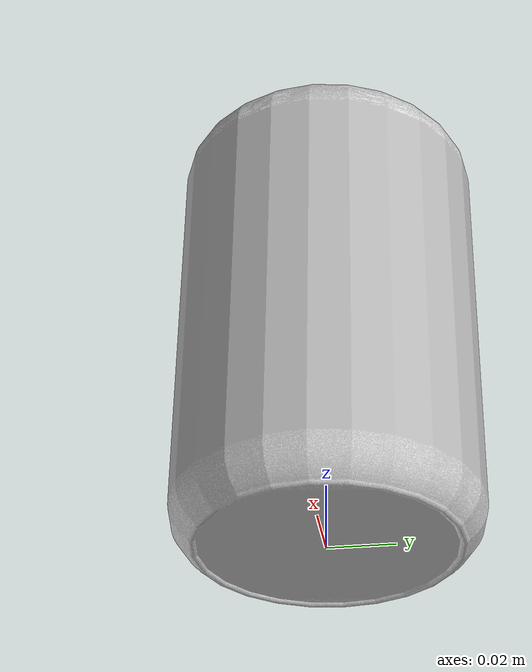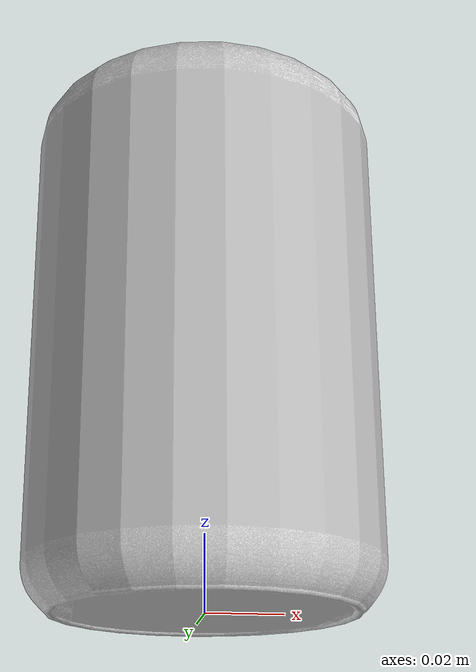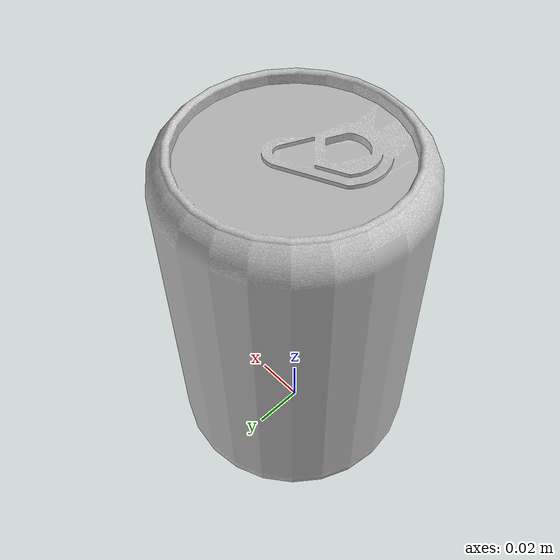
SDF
<?xml version="1.0" ?>
<sdf version="1.4">
  <model name="FantaOrangeCan">
    <link name="FantaOrangeCan_link">
      <inertial>
        <pose>0 0 0 0 0 0</pose>
        <mass>0.08</mass>
      </inertial>

      <visual name="FantaOrangeCan_visual">
        <pose>0 0 0 0 0 0</pose>
        <geometry>
          <mesh>
            <uri>model://FantaOrangeCan/meshes/FantaOrangeCan.dae</uri>
          </mesh>
        </geometry>
      </visual>

      <collision name="FantaOrangeCan_collision">
        <pose>0 0 0 0 0 0</pose>
        <geometry>
          <mesh>
            <uri>model://FantaOrangeCan/meshes/FantaOrangeCan.dae</uri>
          </mesh>
        </geometry>
        <surface>
          <friction>
            <ode>
              <mu>0.8</mu>
              <mu2>0.8</mu2>
              <fdir1>0.0 0.0 0.0</fdir1>
              <slip1>0.01</slip1>
              <slip2>0.01</slip2>
            </ode>
          </friction>
        </surface>
      </collision>

    </link>
  </model>
</sdf>
